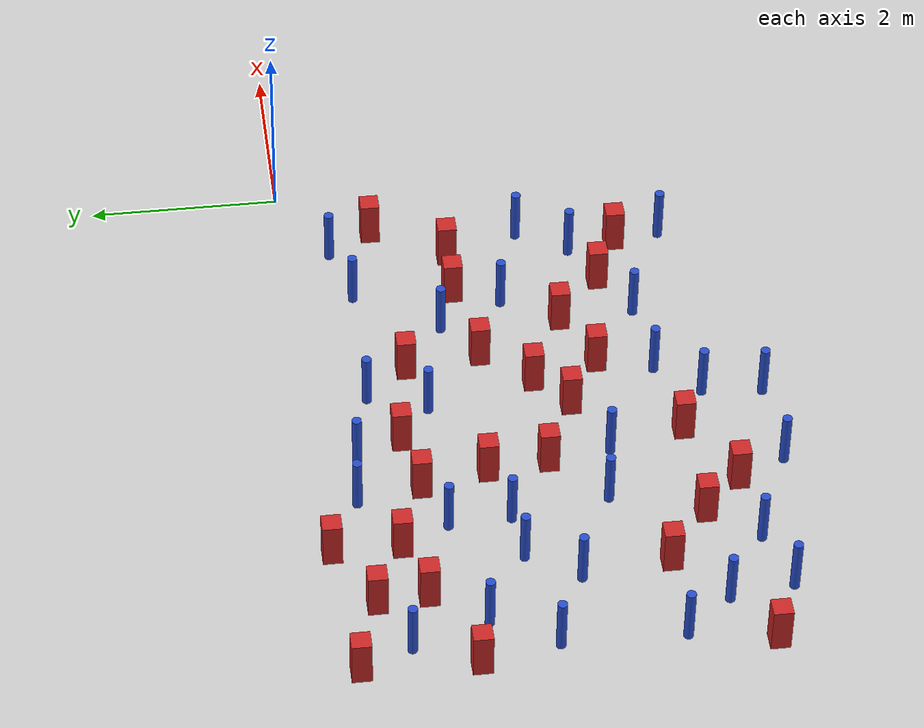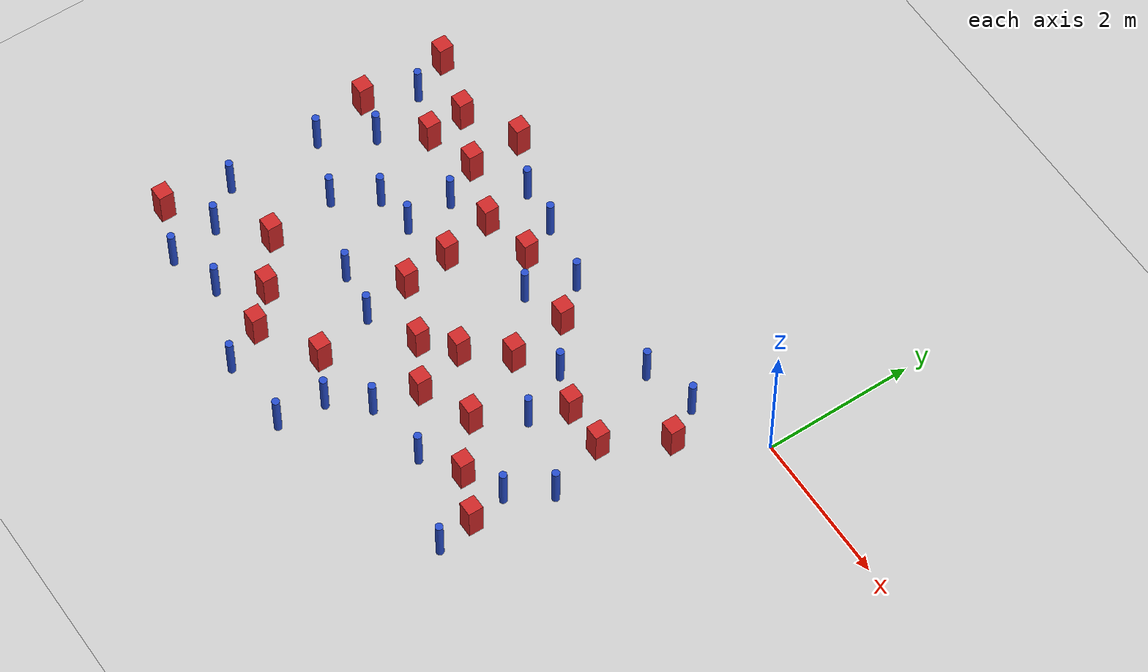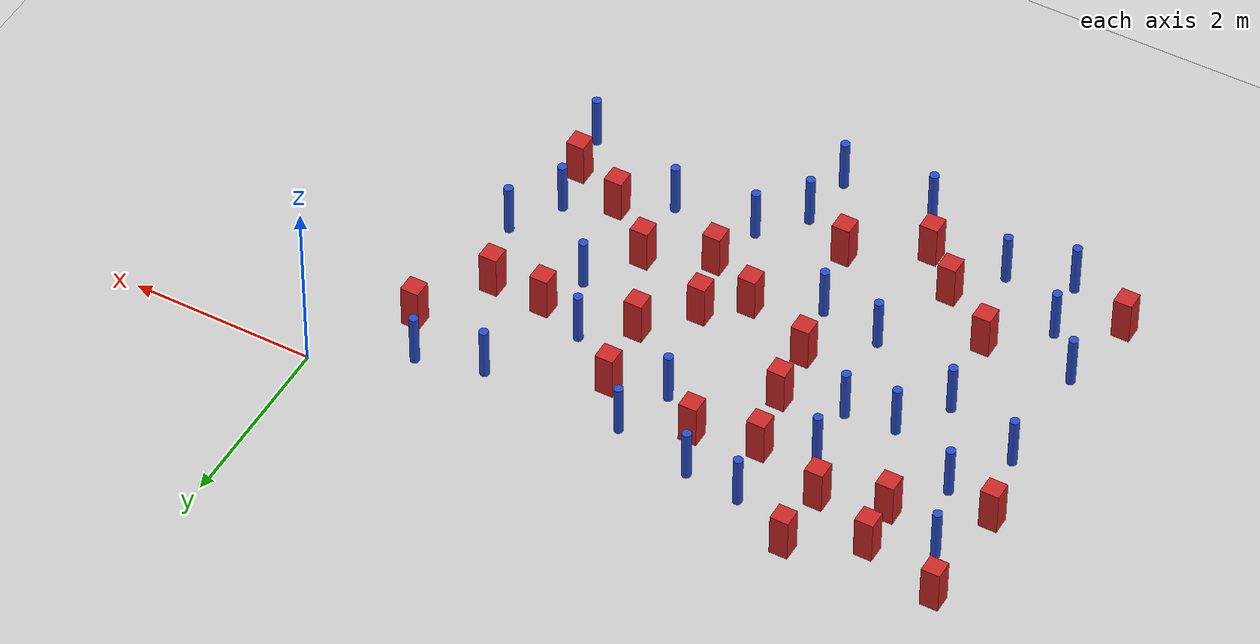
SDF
<sdf version="1.6">
 <world name="default">
  <model name="ground_plane">
   <static>1</static>
   <link name="link">
    <collision name="collision">
     <geometry><plane><normal>0 0 1</normal><size>100 100</size></plane></geometry>
     <surface><friction><ode><mu>100</mu><mu2>50</mu2></ode></friction></surface>
    </collision>
    <visual name="visual">
     <cast_shadows>0</cast_shadows>
     <geometry><plane><normal>0 0 1</normal><size>100 100</size></plane></geometry>
     <material>
      <ambient>1.0 1.0 1.0 1.0</ambient>
      <diffuse>0.8 0.8 0.8 1.0</diffuse>
      <specular>0.01 0.01 0.01 1.000000</specular>
     </material>
    </visual>
   </link>
  </model>
  <model name="pole_obstacle7">
   <static>true</static>
   <pose>-5.88980999024 -2.51619997922 -3.09024884793e-07 -7.19054271912e-07 -2.11315075135e-07 -1.93935509265e-07</pose>
   <link name="link">
    <pose>0 0 0.3 0 -0 0</pose>
    <inertial>
     <mass>1</mass>
     <inertia><ixx>0.145833</ixx><ixy>0</ixy><ixz>0</ixz><iyy>0.145833</iyy><iyz>0</iyz><izz>0.125</izz></inertia>
    </inertial>
    <collision name="collision">
     <geometry><cylinder><radius>0.05</radius><length>.6</length></cylinder></geometry>
    </collision>
    <visual name="visual">
     <geometry><cylinder><radius>0.05</radius><length>.6</length></cylinder></geometry>
     <material>
      <script><name>Gazebo/Blue</name><uri>file://media/materials/scripts/gazebo.material</uri></script>
     </material>
    </visual>
   </link>
  </model>
  <model name="pole_obstacle8">
   <static>true</static>
   <pose>-6.73233999024 -2.18094997922 -3.09024884793e-07 -7.19054271912e-07 -2.11315075144e-07 -1.93935509269e-07</pose>
   <link name="link">
    <pose>0 0 0.3 0 -0 0</pose>
    <inertial>
     <mass>1</mass>
     <inertia><ixx>0.145833</ixx><ixy>0</ixy><ixz>0</ixz><iyy>0.145833</iyy><iyz>0</iyz><izz>0.125</izz></inertia>
    </inertial>
    <collision name="collision">
     <geometry><cylinder><radius>0.05</radius><length>.6</length></cylinder></geometry>
    </collision>
    <visual name="visual">
     <geometry><cylinder><radius>0.05</radius><length>.6</length></cylinder></geometry>
     <material>
      <script><name>Gazebo/Blue</name><uri>file://media/materials/scripts/gazebo.material</uri></script>
     </material>
    </visual>
   </link>
  </model>
  <model name="square_post_obstacle9">
   <static>true</static>
   <pose>-3.1272499448 -2.40542002533 -4.36207812815e-07 3.75137919937e-06 9.77721102514e-07 2.47381364184e-05</pose>
   <link name="link">
    <pose>0 0 0.25 0 -0 0</pose>
    <inertial>
     <mass>100</mass>
     <inertia>
      <ixx>0.166667</ixx>
      <ixy>0</ixy>
      <ixz>0</ixz>
      <iyy>0.166667</iyy>
      <iyz>0</iyz>
      <izz>0.166667</izz>
     </inertia>
    </inertial>
    <collision name="collision"><geometry><box><size>.2 .2 .5</size></box></geometry></collision>
    <visual name="visual">
     <geometry><box><size>.2 .2 .5</size></box></geometry>
     <material>
      <script><name>Gazebo/Red</name><uri>file://media/materials/scripts/gazebo.material</uri></script>
     </material>
    </visual>
   </link>
  </model>
  <model name="square_post_obstacle20">
   <static>true</static>
   <pose>-5.3107999448 -0.792541025326 -4.36207812815e-07 3.75137919937e-06 9.77721102514e-07 2.47381364184e-05</pose>
   <link name="link">
    <pose>0 0 0.25 0 -0 0</pose>
    <inertial>
     <mass>100</mass>
     <inertia>
      <ixx>0.166667</ixx>
      <ixy>0</ixy>
      <ixz>0</ixz>
      <iyy>0.166667</iyy>
      <iyz>0</iyz>
      <izz>0.166667</izz>
     </inertia>
    </inertial>
    <collision name="collision"><geometry><box><size>.2 .2 .5</size></box></geometry></collision>
    <visual name="visual">
     <geometry><box><size>.2 .2 .5</size></box></geometry>
     <material>
      <script><name>Gazebo/Red</name><uri>file://media/materials/scripts/gazebo.material</uri></script>
     </material>
    </visual>
   </link>
  </model>
  <model name="pole_obstacle32">
   <static>true</static>
   <pose>-6.32651999024 -3.92005997922 -3.09024884793e-07 -7.19054271912e-07 -2.11315075135e-07 -1.93935509265e-07</pose>
   <link name="link">
    <pose>0 0 0.3 0 -0 0</pose>
    <inertial>
     <mass>1</mass>
     <inertia><ixx>0.145833</ixx><ixy>0</ixy><ixz>0</ixz><iyy>0.145833</iyy><iyz>0</iyz><izz>0.125</izz></inertia>
    </inertial>
    <collision name="collision">
     <geometry><cylinder><radius>0.05</radius><length>.6</length></cylinder></geometry>
    </collision>
    <visual name="visual">
     <geometry><cylinder><radius>0.05</radius><length>.6</length></cylinder></geometry>
     <material>
      <script><name>Gazebo/Blue</name><uri>file://media/materials/scripts/gazebo.material</uri></script>
     </material>
    </visual>
   </link>
  </model>
  <model name="square_post_obstacle27">
   <static>true</static>
   <pose>-4.3002799448 -2.40280002533 -4.36207812815e-07 3.75137919937e-06 9.77721102514e-07 2.47381364184e-05</pose>
   <link name="link">
    <pose>0 0 0.25 0 -0 0</pose>
    <inertial>
     <mass>100</mass>
     <inertia>
      <ixx>0.166667</ixx>
      <ixy>0</ixy>
      <ixz>0</ixz>
      <iyy>0.166667</iyy>
      <iyz>0</iyz>
      <izz>0.166667</izz>
     </inertia>
    </inertial>
    <collision name="collision"><geometry><box><size>.2 .2 .5</size></box></geometry></collision>
    <visual name="visual">
     <geometry><box><size>.2 .2 .5</size></box></geometry>
     <material>
      <script><name>Gazebo/Red</name><uri>file://media/materials/scripts/gazebo.material</uri></script>
     </material>
    </visual>
   </link>
  </model>
  <model name="square_post_obstacle36">
   <static>true</static>
   <pose>-2.2494299448 -2.80502002533 -4.36207812815e-07 3.75137919937e-06 9.77721102514e-07 2.47381364184e-05</pose>
   <link name="link">
    <pose>0 0 0.25 0 -0 0</pose>
    <inertial>
     <mass>100</mass>
     <inertia>
      <ixx>0.166667</ixx>
      <ixy>0</ixy>
      <ixz>0</ixz>
      <iyy>0.166667</iyy>
      <iyz>0</iyz>
      <izz>0.166667</izz>
     </inertia>
    </inertial>
    <collision name="collision"><geometry><box><size>.2 .2 .5</size></box></geometry></collision>
    <visual name="visual">
     <geometry><box><size>.2 .2 .5</size></box></geometry>
     <material>
      <script><name>Gazebo/Red</name><uri>file://media/materials/scripts/gazebo.material</uri></script>
     </material>
    </visual>
   </link>
  </model>
  <model name="pole_obstacle52">
   <static>true</static>
   <pose>-2.17680999024 -3.60393997922 -3.09024884848e-07 -7.19054271903e-07 -2.11315075195e-07 -1.93935509285e-07</pose>
   <link name="link">
    <pose>0 0 0.3 0 -0 0</pose>
    <inertial>
     <mass>1</mass>
     <inertia><ixx>0.145833</ixx><ixy>0</ixy><ixz>0</ixz><iyy>0.145833</iyy><iyz>0</iyz><izz>0.125</izz></inertia>
    </inertial>
    <collision name="collision">
     <geometry><cylinder><radius>0.05</radius><length>.6</length></cylinder></geometry>
    </collision>
    <visual name="visual">
     <geometry><cylinder><radius>0.05</radius><length>.6</length></cylinder></geometry>
     <material>
      <script><name>Gazebo/Blue</name><uri>file://media/materials/scripts/gazebo.material</uri></script>
     </material>
    </visual>
   </link>
  </model>
  <model name="square_post_obstacle53">
   <static>true</static>
   <pose>-5.7875799448 -3.42508002533 -4.36207812815e-07 3.75137919937e-06 9.77721102514e-07 2.47381364184e-05</pose>
   <link name="link">
    <pose>0 0 0.25 0 -0 0</pose>
    <inertial>
     <mass>100</mass>
     <inertia>
      <ixx>0.166667</ixx>
      <ixy>0</ixy>
      <ixz>0</ixz>
      <iyy>0.166667</iyy>
      <iyz>0</iyz>
      <izz>0.166667</izz>
     </inertia>
    </inertial>
    <collision name="collision"><geometry><box><size>.2 .2 .5</size></box></geometry></collision>
    <visual name="visual">
     <geometry><box><size>.2 .2 .5</size></box></geometry>
     <material>
      <script><name>Gazebo/Red</name><uri>file://media/materials/scripts/gazebo.material</uri></script>
     </material>
    </visual>
   </link>
  </model>
  <model name="square_post_obstacle62">
   <static>true</static>
   <pose>-2.6891399448 -1.89990002533 -4.36207812815e-07 3.75137919937e-06 9.77721102514e-07 2.47381364184e-05</pose>
   <link name="link">
    <pose>0 0 0.25 0 -0 0</pose>
    <inertial>
     <mass>100</mass>
     <inertia>
      <ixx>0.166667</ixx>
      <ixy>0</ixy>
      <ixz>0</ixz>
      <iyy>0.166667</iyy>
      <iyz>0</iyz>
      <izz>0.166667</izz>
     </inertia>
    </inertial>
    <collision name="collision"><geometry><box><size>.2 .2 .5</size></box></geometry></collision>
    <visual name="visual">
     <geometry><box><size>.2 .2 .5</size></box></geometry>
     <material>
      <script><name>Gazebo/Red</name><uri>file://media/materials/scripts/gazebo.material</uri></script>
     </material>
    </visual>
   </link>
  </model>
  <model name="pole_obstacle76">
   <static>true</static>
   <pose>-3.50894999024 -4.75461997922 -3.09024884848e-07 -7.19054271903e-07 -2.11315075193e-07 -1.93935509285e-07</pose>
   <link name="link">
    <pose>0 0 0.3 0 -0 0</pose>
    <inertial>
     <mass>1</mass>
     <inertia><ixx>0.145833</ixx><ixy>0</ixy><ixz>0</ixz><iyy>0.145833</iyy><iyz>0</iyz><izz>0.125</izz></inertia>
    </inertial>
    <collision name="collision">
     <geometry><cylinder><radius>0.05</radius><length>.6</length></cylinder></geometry>
    </collision>
    <visual name="visual">
     <geometry><cylinder><radius>0.05</radius><length>.6</length></cylinder></geometry>
     <material>
      <script><name>Gazebo/Blue</name><uri>file://media/materials/scripts/gazebo.material</uri></script>
     </material>
    </visual>
   </link>
  </model>
  <model name="square_post_obstacle72">
   <static>true</static>
   <pose>-6.0330299448 -0.463411025326 -4.36207812815e-07 3.75137919937e-06 9.77721102514e-07 2.47381364184e-05</pose>
   <link name="link">
    <pose>0 0 0.25 0 -0 0</pose>
    <inertial>
     <mass>100</mass>
     <inertia>
      <ixx>0.166667</ixx>
      <ixy>0</ixy>
      <ixz>0</ixz>
      <iyy>0.166667</iyy>
      <iyz>0</iyz>
      <izz>0.166667</izz>
     </inertia>
    </inertial>
    <collision name="collision"><geometry><box><size>.2 .2 .5</size></box></geometry></collision>
    <visual name="visual">
     <geometry><box><size>.2 .2 .5</size></box></geometry>
     <material>
      <script><name>Gazebo/Red</name><uri>file://media/materials/scripts/gazebo.material</uri></script>
     </material>
    </visual>
   </link>
  </model>
  <model name="pole_obstacle85">
   <static>true</static>
   <pose>-1.63928999024 -0.678962979217 -3.09024884793e-07 -7.19054271912e-07 -2.1131507513e-07 -1.93935509263e-07</pose>
   <link name="link">
    <pose>0 0 0.3 0 -0 0</pose>
    <inertial>
     <mass>1</mass>
     <inertia><ixx>0.145833</ixx><ixy>0</ixy><ixz>0</ixz><iyy>0.145833</iyy><iyz>0</iyz><izz>0.125</izz></inertia>
    </inertial>
    <collision name="collision">
     <geometry><cylinder><radius>0.05</radius><length>.6</length></cylinder></geometry>
    </collision>
    <visual name="visual">
     <geometry><cylinder><radius>0.05</radius><length>.6</length></cylinder></geometry>
     <material>
      <script><name>Gazebo/Blue</name><uri>file://media/materials/scripts/gazebo.material</uri></script>
     </material>
    </visual>
   </link>
  </model>
  <model name="square_post_obstacle81">
   <static>true</static>
   <pose>-6.8783699448 -0.214582025326 -4.36207812815e-07 3.75137919937e-06 9.77721102514e-07 2.47381364184e-05</pose>
   <link name="link">
    <pose>0 0 0.25 0 -0 0</pose>
    <inertial>
     <mass>100</mass>
     <inertia>
      <ixx>0.166667</ixx>
      <ixy>0</ixy>
      <ixz>0</ixz>
      <iyy>0.166667</iyy>
      <iyz>0</iyz>
      <izz>0.166667</izz>
     </inertia>
    </inertial>
    <collision name="collision"><geometry><box><size>.2 .2 .5</size></box></geometry></collision>
    <visual name="visual">
     <geometry><box><size>.2 .2 .5</size></box></geometry>
     <material>
      <script><name>Gazebo/Red</name><uri>file://media/materials/scripts/gazebo.material</uri></script>
     </material>
    </visual>
   </link>
  </model>
  <model name="square_post_obstacle82">
   <static>true</static>
   <pose>-2.8053899448 -1.11260002533 -4.36207812815e-07 3.75137919937e-06 9.77721102514e-07 2.47381364184e-05</pose>
   <link name="link">
    <pose>0 0 0.25 0 -0 0</pose>
    <inertial>
     <mass>100</mass>
     <inertia>
      <ixx>0.166667</ixx>
      <ixy>0</ixy>
      <ixz>0</ixz>
      <iyy>0.166667</iyy>
      <iyz>0</iyz>
      <izz>0.166667</izz>
     </inertia>
    </inertial>
    <collision name="collision"><geometry><box><size>.2 .2 .5</size></box></geometry></collision>
    <visual name="visual">
     <geometry><box><size>.2 .2 .5</size></box></geometry>
     <material>
      <script><name>Gazebo/Red</name><uri>file://media/materials/scripts/gazebo.material</uri></script>
     </material>
    </visual>
   </link>
  </model>
  <model name="pole_obstacle92">
   <static>true</static>
   <pose>-4.03740999024 -0.474789979217 -3.09024884793e-07 -7.19054271912e-07 -2.11315075137e-07 -1.93935509266e-07</pose>
   <link name="link">
    <pose>0 0 0.3 0 -0 0</pose>
    <inertial>
     <mass>1</mass>
     <inertia><ixx>0.145833</ixx><ixy>0</ixy><ixz>0</ixz><iyy>0.145833</iyy><iyz>0</iyz><izz>0.125</izz></inertia>
    </inertial>
    <collision name="collision">
     <geometry><cylinder><radius>0.05</radius><length>.6</length></cylinder></geometry>
    </collision>
    <visual name="visual">
     <geometry><cylinder><radius>0.05</radius><length>.6</length></cylinder></geometry>
     <material>
      <script><name>Gazebo/Blue</name><uri>file://media/materials/scripts/gazebo.material</uri></script>
     </material>
    </visual>
   </link>
  </model>
  <model name="square_post_obstacle87">
   <static>true</static>
   <pose>-6.9159399448 -4.29540002533 -4.36207812815e-07 3.75137919937e-06 9.77721102514e-07 2.47381364184e-05</pose>
   <link name="link">
    <pose>0 0 0.25 0 -0 0</pose>
    <inertial>
     <mass>100</mass>
     <inertia>
      <ixx>0.166667</ixx>
      <ixy>0</ixy>
      <ixz>0</ixz>
      <iyy>0.166667</iyy>
      <iyz>0</iyz>
      <izz>0.166667</izz>
     </inertia>
    </inertial>
    <collision name="collision"><geometry><box><size>.2 .2 .5</size></box></geometry></collision>
    <visual name="visual">
     <geometry><box><size>.2 .2 .5</size></box></geometry>
     <material>
      <script><name>Gazebo/Red</name><uri>file://media/materials/scripts/gazebo.material</uri></script>
     </material>
    </visual>
   </link>
  </model>
  <model name="square_post_obstacle88">
   <static>true</static>
   <pose>-5.9878399448 -0.981229025326 -4.36207812815e-07 3.75137919937e-06 9.77721102514e-07 2.47381364184e-05</pose>
   <link name="link">
    <pose>0 0 0.25 0 -0 0</pose>
    <inertial>
     <mass>100</mass>
     <inertia>
      <ixx>0.166667</ixx>
      <ixy>0</ixy>
      <ixz>0</ixz>
      <iyy>0.166667</iyy>
      <iyz>0</iyz>
      <izz>0.166667</izz>
     </inertia>
    </inertial>
    <collision name="collision"><geometry><box><size>.2 .2 .5</size></box></geometry></collision>
    <visual name="visual">
     <geometry><box><size>.2 .2 .5</size></box></geometry>
     <material>
      <script><name>Gazebo/Red</name><uri>file://media/materials/scripts/gazebo.material</uri></script>
     </material>
    </visual>
   </link>
  </model>
  <model name="square_post_obstacle96">
   <static>true</static>
   <pose>-1.0811299448 -3.56258002533 -4.36207812815e-07 3.75137919937e-06 9.77721102514e-07 2.47381364184e-05</pose>
   <link name="link">
    <pose>0 0 0.25 0 -0 0</pose>
    <inertial>
     <mass>100</mass>
     <inertia>
      <ixx>0.166667</ixx>
      <ixy>0</ixy>
      <ixz>0</ixz>
      <iyy>0.166667</iyy>
      <iyz>0</iyz>
      <izz>0.166667</izz>
     </inertia>
    </inertial>
    <collision name="collision"><geometry><box><size>.2 .2 .5</size></box></geometry></collision>
    <visual name="visual">
     <geometry><box><size>.2 .2 .5</size></box></geometry>
     <material>
      <script><name>Gazebo/Red</name><uri>file://media/materials/scripts/gazebo.material</uri></script>
     </material>
    </visual>
   </link>
  </model>
  <model name="pole_obstacle104">
   <static>true</static>
   <pose>-5.55288999024 -4.37852997922 -3.09024884793e-07 -7.19054271911e-07 -2.1131507516e-07 -1.93935509277e-07</pose>
   <link name="link">
    <pose>0 0 0.3 0 -0 0</pose>
    <inertial>
     <mass>1</mass>
     <inertia><ixx>0.145833</ixx><ixy>0</ixy><ixz>0</ixz><iyy>0.145833</iyy><iyz>0</iyz><izz>0.125</izz></inertia>
    </inertial>
    <collision name="collision">
     <geometry><cylinder><radius>0.05</radius><length>.6</length></cylinder></geometry>
    </collision>
    <visual name="visual">
     <geometry><cylinder><radius>0.05</radius><length>.6</length></cylinder></geometry>
     <material>
      <script><name>Gazebo/Blue</name><uri>file://media/materials/scripts/gazebo.material</uri></script>
     </material>
    </visual>
   </link>
  </model>
  <model name="pole_obstacle106">
   <static>true</static>
   <pose>-5.54922999024 -1.98764997922 -3.09024884793e-07 -7.19054271912e-07 -2.11315075115e-07 -1.93935509255e-07</pose>
   <link name="link">
    <pose>0 0 0.3 0 -0 0</pose>
    <inertial>
     <mass>1</mass>
     <inertia><ixx>0.145833</ixx><ixy>0</ixy><ixz>0</ixz><iyy>0.145833</iyy><iyz>0</iyz><izz>0.125</izz></inertia>
    </inertial>
    <collision name="collision">
     <geometry><cylinder><radius>0.05</radius><length>.6</length></cylinder></geometry>
    </collision>
    <visual name="visual">
     <geometry><cylinder><radius>0.05</radius><length>.6</length></cylinder></geometry>
     <material>
      <script><name>Gazebo/Blue</name><uri>file://media/materials/scripts/gazebo.material</uri></script>
     </material>
    </visual>
   </link>
  </model>
  <model name="pole_obstacle117">
   <static>true</static>
   <pose>-4.63686999024 -0.415469979217 -3.09024884793e-07 -7.19054271912e-07 -2.11315075138e-07 -1.93935509266e-07</pose>
   <link name="link">
    <pose>0 0 0.3 0 -0 0</pose>
    <inertial>
     <mass>1</mass>
     <inertia><ixx>0.145833</ixx><ixy>0</ixy><ixz>0</ixz><iyy>0.145833</iyy><iyz>0</iyz><izz>0.125</izz></inertia>
    </inertial>
    <collision name="collision">
     <geometry><cylinder><radius>0.05</radius><length>.6</length></cylinder></geometry>
    </collision>
    <visual name="visual">
     <geometry><cylinder><radius>0.05</radius><length>.6</length></cylinder></geometry>
     <material>
      <script><name>Gazebo/Blue</name><uri>file://media/materials/scripts/gazebo.material</uri></script>
     </material>
    </visual>
   </link>
  </model>
  <model name="square_post_obstacle116">
   <static>true</static>
   <pose>-0.669029944804 -0.961219025326 -4.36207812815e-07 3.75137919937e-06 9.77721102514e-07 2.47381364184e-05</pose>
   <link name="link">
    <pose>0 0 0.25 0 -0 0</pose>
    <inertial>
     <mass>100</mass>
     <inertia>
      <ixx>0.166667</ixx>
      <ixy>0</ixy>
      <ixz>0</ixz>
      <iyy>0.166667</iyy>
      <iyz>0</iyz>
      <izz>0.166667</izz>
     </inertia>
    </inertial>
    <collision name="collision"><geometry><box><size>.2 .2 .5</size></box></geometry></collision>
    <visual name="visual">
     <geometry><box><size>.2 .2 .5</size></box></geometry>
     <material>
      <script><name>Gazebo/Red</name><uri>file://media/materials/scripts/gazebo.material</uri></script>
     </material>
    </visual>
   </link>
  </model>
  <model name="pole_obstacle119">
   <static>true</static>
   <pose>-1.88406999024 -2.22853997922 -3.09024884848e-07 -7.19054271902e-07 -2.11315075192e-07 -1.93935509282e-07</pose>
   <link name="link">
    <pose>0 0 0.3 0 -0 0</pose>
    <inertial>
     <mass>1</mass>
     <inertia><ixx>0.145833</ixx><ixy>0</ixy><ixz>0</ixz><iyy>0.145833</iyy><iyz>0</iyz><izz>0.125</izz></inertia>
    </inertial>
    <collision name="collision">
     <geometry><cylinder><radius>0.05</radius><length>.6</length></cylinder></geometry>
    </collision>
    <visual name="visual">
     <geometry><cylinder><radius>0.05</radius><length>.6</length></cylinder></geometry>
     <material>
      <script><name>Gazebo/Blue</name><uri>file://media/materials/scripts/gazebo.material</uri></script>
     </material>
    </visual>
   </link>
  </model>
  <model name="pole_obstacle120">
   <static>true</static>
   <pose>-6.36760999024 -1.53090997922 -3.09024884793e-07 -7.19054271912e-07 -2.11315075124e-07 -1.93935509261e-07</pose>
   <link name="link">
    <pose>0 0 0.3 0 -0 0</pose>
    <inertial>
     <mass>1</mass>
     <inertia><ixx>0.145833</ixx><ixy>0</ixy><ixz>0</ixz><iyy>0.145833</iyy><iyz>0</iyz><izz>0.125</izz></inertia>
    </inertial>
    <collision name="collision">
     <geometry><cylinder><radius>0.05</radius><length>.6</length></cylinder></geometry>
    </collision>
    <visual name="visual">
     <geometry><cylinder><radius>0.05</radius><length>.6</length></cylinder></geometry>
     <material>
      <script><name>Gazebo/Blue</name><uri>file://media/materials/scripts/gazebo.material</uri></script>
     </material>
    </visual>
   </link>
  </model>
  <model name="pole_obstacle129">
   <static>true</static>
   <pose>-2.21075999024 -1.55062997922 -3.09024884793e-07 -7.19054271911e-07 -2.11315075167e-07 -1.93935509283e-07</pose>
   <link name="link">
    <pose>0 0 0.3 0 -0 0</pose>
    <inertial>
     <mass>1</mass>
     <inertia><ixx>0.145833</ixx><ixy>0</ixy><ixz>0</ixz><iyy>0.145833</iyy><iyz>0</iyz><izz>0.125</izz></inertia>
    </inertial>
    <collision name="collision">
     <geometry><cylinder><radius>0.05</radius><length>.6</length></cylinder></geometry>
    </collision>
    <visual name="visual">
     <geometry><cylinder><radius>0.05</radius><length>.6</length></cylinder></geometry>
     <material>
      <script><name>Gazebo/Blue</name><uri>file://media/materials/scripts/gazebo.material</uri></script>
     </material>
    </visual>
   </link>
  </model>
  <model name="pole_obstacle133">
   <static>true</static>
   <pose>-3.44663999024 -4.12726997922 -3.09024884848e-07 -7.19054271903e-07 -2.11315075193e-07 -1.93935509285e-07</pose>
   <link name="link">
    <pose>0 0 0.3 0 -0 0</pose>
    <inertial>
     <mass>1</mass>
     <inertia><ixx>0.145833</ixx><ixy>0</ixy><ixz>0</ixz><iyy>0.145833</iyy><iyz>0</iyz><izz>0.125</izz></inertia>
    </inertial>
    <collision name="collision">
     <geometry><cylinder><radius>0.05</radius><length>.6</length></cylinder></geometry>
    </collision>
    <visual name="visual">
     <geometry><cylinder><radius>0.05</radius><length>.6</length></cylinder></geometry>
     <material>
      <script><name>Gazebo/Blue</name><uri>file://media/materials/scripts/gazebo.material</uri></script>
     </material>
    </visual>
   </link>
  </model>
  <model name="pole_obstacle136">
   <static>true</static>
   <pose>-0.848078990239 -2.52636997922 -3.09024884793e-07 -7.19054271912e-07 -2.11315075129e-07 -1.93935509263e-07</pose>
   <link name="link">
    <pose>0 0 0.3 0 -0 0</pose>
    <inertial>
     <mass>1</mass>
     <inertia><ixx>0.145833</ixx><ixy>0</ixy><ixz>0</ixz><iyy>0.145833</iyy><iyz>0</iyz><izz>0.125</izz></inertia>
    </inertial>
    <collision name="collision">
     <geometry><cylinder><radius>0.05</radius><length>.6</length></cylinder></geometry>
    </collision>
    <visual name="visual">
     <geometry><cylinder><radius>0.05</radius><length>.6</length></cylinder></geometry>
     <material>
      <script><name>Gazebo/Blue</name><uri>file://media/materials/scripts/gazebo.material</uri></script>
     </material>
    </visual>
   </link>
  </model>
  <model name="pole_obstacle140">
   <static>true</static>
   <pose>-6.22300999024 -4.58109997922 -3.09024884793e-07 -7.19054271911e-07 -2.1131507516e-07 -1.93935509277e-07</pose>
   <link name="link">
    <pose>0 0 0.3 0 -0 0</pose>
    <inertial>
     <mass>1</mass>
     <inertia><ixx>0.145833</ixx><ixy>0</ixy><ixz>0</ixz><iyy>0.145833</iyy><iyz>0</iyz><izz>0.125</izz></inertia>
    </inertial>
    <collision name="collision">
     <geometry><cylinder><radius>0.05</radius><length>.6</length></cylinder></geometry>
    </collision>
    <visual name="visual">
     <geometry><cylinder><radius>0.05</radius><length>.6</length></cylinder></geometry>
     <material>
      <script><name>Gazebo/Blue</name><uri>file://media/materials/scripts/gazebo.material</uri></script>
     </material>
    </visual>
   </link>
  </model>
  <model name="square_post_obstacle135">
   <static>true</static>
   <pose>-4.7588799448 -4.28148002533 -4.36207812815e-07 3.75137919937e-06 9.77721102514e-07 2.47381364184e-05</pose>
   <link name="link">
    <pose>0 0 0.25 0 -0 0</pose>
    <inertial>
     <mass>100</mass>
     <inertia>
      <ixx>0.166667</ixx>
      <ixy>0</ixy>
      <ixz>0</ixz>
      <iyy>0.166667</iyy>
      <iyz>0</iyz>
      <izz>0.166667</izz>
     </inertia>
    </inertial>
    <collision name="collision"><geometry><box><size>.2 .2 .5</size></box></geometry></collision>
    <visual name="visual">
     <geometry><box><size>.2 .2 .5</size></box></geometry>
     <material>
      <script><name>Gazebo/Red</name><uri>file://media/materials/scripts/gazebo.material</uri></script>
     </material>
    </visual>
   </link>
  </model>
  <model name="square_post_obstacle136">
   <static>true</static>
   <pose>-4.5213299448 -1.07696002533 -4.36207812815e-07 3.75137919937e-06 9.77721102514e-07 2.47381364184e-05</pose>
   <link name="link">
    <pose>0 0 0.25 0 -0 0</pose>
    <inertial>
     <mass>100</mass>
     <inertia>
      <ixx>0.166667</ixx>
      <ixy>0</ixy>
      <ixz>0</ixz>
      <iyy>0.166667</iyy>
      <iyz>0</iyz>
      <izz>0.166667</izz>
     </inertia>
    </inertial>
    <collision name="collision"><geometry><box><size>.2 .2 .5</size></box></geometry></collision>
    <visual name="visual">
     <geometry><box><size>.2 .2 .5</size></box></geometry>
     <material>
      <script><name>Gazebo/Red</name><uri>file://media/materials/scripts/gazebo.material</uri></script>
     </material>
    </visual>
   </link>
  </model>
  <model name="square_post_obstacle137">
   <static>true</static>
   <pose>-1.1139999448 -1.74364002533 -4.36207812815e-07 3.75137919937e-06 9.77721102514e-07 2.47381364184e-05</pose>
   <link name="link">
    <pose>0 0 0.25 0 -0 0</pose>
    <inertial>
     <mass>100</mass>
     <inertia>
      <ixx>0.166667</ixx>
      <ixy>0</ixy>
      <ixz>0</ixz>
      <iyy>0.166667</iyy>
      <iyz>0</iyz>
      <izz>0.166667</izz>
     </inertia>
    </inertial>
    <collision name="collision"><geometry><box><size>.2 .2 .5</size></box></geometry></collision>
    <visual name="visual">
     <geometry><box><size>.2 .2 .5</size></box></geometry>
     <material>
      <script><name>Gazebo/Red</name><uri>file://media/materials/scripts/gazebo.material</uri></script>
     </material>
    </visual>
   </link>
  </model>
  <model name="pole_obstacle151">
   <static>true</static>
   <pose>-6.74801999024 -3.43252997922 -3.09024884793e-07 -7.19054271912e-07 -2.11315075144e-07 -1.93935509269e-07</pose>
   <link name="link">
    <pose>0 0 0.3 0 -0 0</pose>
    <inertial>
     <mass>1</mass>
     <inertia><ixx>0.145833</ixx><ixy>0</ixy><ixz>0</ixz><iyy>0.145833</iyy><iyz>0</iyz><izz>0.125</izz></inertia>
    </inertial>
    <collision name="collision">
     <geometry><cylinder><radius>0.05</radius><length>.6</length></cylinder></geometry>
    </collision>
    <visual name="visual">
     <geometry><cylinder><radius>0.05</radius><length>.6</length></cylinder></geometry>
     <material>
      <script><name>Gazebo/Blue</name><uri>file://media/materials/scripts/gazebo.material</uri></script>
     </material>
    </visual>
   </link>
  </model>
  <model name="square_post_obstacle148">
   <static>true</static>
   <pose>-1.7050999448 -1.73418002533 -4.36207812815e-07 3.75137919937e-06 9.77721102514e-07 2.47381364184e-05</pose>
   <link name="link">
    <pose>0 0 0.25 0 -0 0</pose>
    <inertial>
     <mass>100</mass>
     <inertia>
      <ixx>0.166667</ixx>
      <ixy>0</ixy>
      <ixz>0</ixz>
      <iyy>0.166667</iyy>
      <iyz>0</iyz>
      <izz>0.166667</izz>
     </inertia>
    </inertial>
    <collision name="collision"><geometry><box><size>.2 .2 .5</size></box></geometry></collision>
    <visual name="visual">
     <geometry><box><size>.2 .2 .5</size></box></geometry>
     <material>
      <script><name>Gazebo/Red</name><uri>file://media/materials/scripts/gazebo.material</uri></script>
     </material>
    </visual>
   </link>
  </model>
  <model name="square_post_obstacle150">
   <static>true</static>
   <pose>-1.6726699448 -3.29393002533 -4.36207812815e-07 3.75137919937e-06 9.77721102514e-07 2.47381364184e-05</pose>
   <link name="link">
    <pose>0 0 0.25 0 -0 0</pose>
    <inertial>
     <mass>100</mass>
     <inertia>
      <ixx>0.166667</ixx>
      <ixy>0</ixy>
      <ixz>0</ixz>
      <iyy>0.166667</iyy>
      <iyz>0</iyz>
      <izz>0.166667</izz>
     </inertia>
    </inertial>
    <collision name="collision"><geometry><box><size>.2 .2 .5</size></box></geometry></collision>
    <visual name="visual">
     <geometry><box><size>.2 .2 .5</size></box></geometry>
     <material>
      <script><name>Gazebo/Red</name><uri>file://media/materials/scripts/gazebo.material</uri></script>
     </material>
    </visual>
   </link>
  </model>
  <model name="square_post_obstacle163">
   <static>true</static>
   <pose>-5.3128799448 -0.0897060253263 -4.36207812815e-07 3.75137919937e-06 9.77721102514e-07 2.47381364184e-05</pose>
   <link name="link">
    <pose>0 0 0.25 0 -0 0</pose>
    <inertial>
     <mass>100</mass>
     <inertia>
      <ixx>0.166667</ixx>
      <ixy>0</ixy>
      <ixz>0</ixz>
      <iyy>0.166667</iyy>
      <iyz>0</iyz>
      <izz>0.166667</izz>
     </inertia>
    </inertial>
    <collision name="collision"><geometry><box><size>.2 .2 .5</size></box></geometry></collision>
    <visual name="visual">
     <geometry><box><size>.2 .2 .5</size></box></geometry>
     <material>
      <script><name>Gazebo/Red</name><uri>file://media/materials/scripts/gazebo.material</uri></script>
     </material>
    </visual>
   </link>
  </model>
  <model name="pole_obstacle166">
   <static>true</static>
   <pose>-5.04419999024 -1.28863997922 -3.09024884793e-07 -7.19054271912e-07 -2.11315075124e-07 -1.93935509261e-07</pose>
   <link name="link">
    <pose>0 0 0.3 0 -0 0</pose>
    <inertial>
     <mass>1</mass>
     <inertia><ixx>0.145833</ixx><ixy>0</ixy><ixz>0</ixz><iyy>0.145833</iyy><iyz>0</iyz><izz>0.125</izz></inertia>
    </inertial>
    <collision name="collision">
     <geometry><cylinder><radius>0.05</radius><length>.6</length></cylinder></geometry>
    </collision>
    <visual name="visual">
     <geometry><cylinder><radius>0.05</radius><length>.6</length></cylinder></geometry>
     <material>
      <script><name>Gazebo/Blue</name><uri>file://media/materials/scripts/gazebo.material</uri></script>
     </material>
    </visual>
   </link>
  </model>
  <model name="square_post_obstacle168">
   <static>true</static>
   <pose>-3.9937099448 -3.84085002533 -4.36207812815e-07 3.75137919937e-06 9.77721102514e-07 2.47381364184e-05</pose>
   <link name="link">
    <pose>0 0 0.25 0 -0 0</pose>
    <inertial>
     <mass>100</mass>
     <inertia>
      <ixx>0.166667</ixx>
      <ixy>0</ixy>
      <ixz>0</ixz>
      <iyy>0.166667</iyy>
      <iyz>0</iyz>
      <izz>0.166667</izz>
     </inertia>
    </inertial>
    <collision name="collision"><geometry><box><size>.2 .2 .5</size></box></geometry></collision>
    <visual name="visual">
     <geometry><box><size>.2 .2 .5</size></box></geometry>
     <material>
      <script><name>Gazebo/Red</name><uri>file://media/materials/scripts/gazebo.material</uri></script>
     </material>
    </visual>
   </link>
  </model>
  <model name="pole_obstacle170">
   <static>true</static>
   <pose>-1.00006999024 -4.06325997922 -3.09024884793e-07 -7.19054271912e-07 -2.11315075133e-07 -1.93935509264e-07</pose>
   <link name="link">
    <pose>0 0 0.3 0 -0 0</pose>
    <inertial>
     <mass>1</mass>
     <inertia><ixx>0.145833</ixx><ixy>0</ixy><ixz>0</ixz><iyy>0.145833</iyy><iyz>0</iyz><izz>0.125</izz></inertia>
    </inertial>
    <collision name="collision">
     <geometry><cylinder><radius>0.05</radius><length>.6</length></cylinder></geometry>
    </collision>
    <visual name="visual">
     <geometry><cylinder><radius>0.05</radius><length>.6</length></cylinder></geometry>
     <material>
      <script><name>Gazebo/Blue</name><uri>file://media/materials/scripts/gazebo.material</uri></script>
     </material>
    </visual>
   </link>
  </model>
  <model name="pole_obstacle175">
   <static>true</static>
   <pose>-3.06019999024 -3.68471997922 -3.09024884848e-07 -7.19054271903e-07 -2.11315075185e-07 -1.93935509279e-07</pose>
   <link name="link">
    <pose>0 0 0.3 0 -0 0</pose>
    <inertial>
     <mass>1</mass>
     <inertia><ixx>0.145833</ixx><ixy>0</ixy><ixz>0</ixz><iyy>0.145833</iyy><iyz>0</iyz><izz>0.125</izz></inertia>
    </inertial>
    <collision name="collision">
     <geometry><cylinder><radius>0.05</radius><length>.6</length></cylinder></geometry>
    </collision>
    <visual name="visual">
     <geometry><cylinder><radius>0.05</radius><length>.6</length></cylinder></geometry>
     <material>
      <script><name>Gazebo/Blue</name><uri>file://media/materials/scripts/gazebo.material</uri></script>
     </material>
    </visual>
   </link>
  </model>
  <model name="pole_obstacle176">
   <static>true</static>
   <pose>-4.84665999024 -2.94217997922 -3.09024884793e-07 -7.19054271912e-07 -2.11315075135e-07 -1.93935509265e-07</pose>
   <link name="link">
    <pose>0 0 0.3 0 -0 0</pose>
    <inertial>
     <mass>1</mass>
     <inertia><ixx>0.145833</ixx><ixy>0</ixy><ixz>0</ixz><iyy>0.145833</iyy><iyz>0</iyz><izz>0.125</izz></inertia>
    </inertial>
    <collision name="collision">
     <geometry><cylinder><radius>0.05</radius><length>.6</length></cylinder></geometry>
    </collision>
    <visual name="visual">
     <geometry><cylinder><radius>0.05</radius><length>.6</length></cylinder></geometry>
     <material>
      <script><name>Gazebo/Blue</name><uri>file://media/materials/scripts/gazebo.material</uri></script>
     </material>
    </visual>
   </link>
  </model>
  <model name="pole_obstacle178">
   <static>true</static>
   <pose>-0.942261990239 -0.498072979217 -3.09024884793e-07 -7.19054271912e-07 -2.11315075131e-07 -1.93935509264e-07</pose>
   <link name="link">
    <pose>0 0 0.3 0 -0 0</pose>
    <inertial>
     <mass>1</mass>
     <inertia><ixx>0.145833</ixx><ixy>0</ixy><ixz>0</ixz><iyy>0.145833</iyy><iyz>0</iyz><izz>0.125</izz></inertia>
    </inertial>
    <collision name="collision">
     <geometry><cylinder><radius>0.05</radius><length>.6</length></cylinder></geometry>
    </collision>
    <visual name="visual">
     <geometry><cylinder><radius>0.05</radius><length>.6</length></cylinder></geometry>
     <material>
      <script><name>Gazebo/Blue</name><uri>file://media/materials/scripts/gazebo.material</uri></script>
     </material>
    </visual>
   </link>
  </model>
  <model name="pole_obstacle182">
   <static>true</static>
   <pose>-6.62986999024 -0.742979979217 -3.09024884793e-07 -7.19054271912e-07 -2.11315075134e-07 -1.93935509265e-07</pose>
   <link name="link">
    <pose>0 0 0.3 0 -0 0</pose>
    <inertial>
     <mass>1</mass>
     <inertia><ixx>0.145833</ixx><ixy>0</ixy><ixz>0</ixz><iyy>0.145833</iyy><iyz>0</iyz><izz>0.125</izz></inertia>
    </inertial>
    <collision name="collision">
     <geometry><cylinder><radius>0.05</radius><length>.6</length></cylinder></geometry>
    </collision>
    <visual name="visual">
     <geometry><cylinder><radius>0.05</radius><length>.6</length></cylinder></geometry>
     <material>
      <script><name>Gazebo/Blue</name><uri>file://media/materials/scripts/gazebo.material</uri></script>
     </material>
    </visual>
   </link>
  </model>
  <model name="pole_obstacle185">
   <static>true</static>
   <pose>-4.50506999024 -4.79520997922 -3.09024884793e-07 -7.19054271911e-07 -2.1131507516e-07 -1.93935509277e-07</pose>
   <link name="link">
    <pose>0 0 0.3 0 -0 0</pose>
    <inertial>
     <mass>1</mass>
     <inertia><ixx>0.145833</ixx><ixy>0</ixy><ixz>0</ixz><iyy>0.145833</iyy><iyz>0</iyz><izz>0.125</izz></inertia>
    </inertial>
    <collision name="collision">
     <geometry><cylinder><radius>0.05</radius><length>.6</length></cylinder></geometry>
    </collision>
    <visual name="visual">
     <geometry><cylinder><radius>0.05</radius><length>.6</length></cylinder></geometry>
     <material>
      <script><name>Gazebo/Blue</name><uri>file://media/materials/scripts/gazebo.material</uri></script>
     </material>
    </visual>
   </link>
  </model>
  <model name="pole_obstacle186">
   <static>true</static>
   <pose>-3.17020999024 -0.666150979217 -3.09024884793e-07 -7.19054271912e-07 -2.11315075126e-07 -1.93935509262e-07</pose>
   <link name="link">
    <pose>0 0 0.3 0 -0 0</pose>
    <inertial>
     <mass>1</mass>
     <inertia><ixx>0.145833</ixx><ixy>0</ixy><ixz>0</ixz><iyy>0.145833</iyy><iyz>0</iyz><izz>0.125</izz></inertia>
    </inertial>
    <collision name="collision">
     <geometry><cylinder><radius>0.05</radius><length>.6</length></cylinder></geometry>
    </collision>
    <visual name="visual">
     <geometry><cylinder><radius>0.05</radius><length>.6</length></cylinder></geometry>
     <material>
      <script><name>Gazebo/Blue</name><uri>file://media/materials/scripts/gazebo.material</uri></script>
     </material>
    </visual>
   </link>
  </model>
  <model name="square_post_obstacle189">
   <static>true</static>
   <pose>-3.8356399448 -0.949167025326 -4.36207812815e-07 3.75137919937e-06 9.77721102514e-07 2.47381364184e-05</pose>
   <link name="link">
    <pose>0 0 0.25 0 -0 0</pose>
    <inertial>
     <mass>100</mass>
     <inertia>
      <ixx>0.166667</ixx>
      <ixy>0</ixy>
      <ixz>0</ixz>
      <iyy>0.166667</iyy>
      <iyz>0</iyz>
      <izz>0.166667</izz>
     </inertia>
    </inertial>
    <collision name="collision"><geometry><box><size>.2 .2 .5</size></box></geometry></collision>
    <visual name="visual">
     <geometry><box><size>.2 .2 .5</size></box></geometry>
     <material>
      <script><name>Gazebo/Red</name><uri>file://media/materials/scripts/gazebo.material</uri></script>
     </material>
    </visual>
   </link>
  </model>
  <model name="square_post_obstacle204">
   <static>true</static>
   <pose>-6.9146999448 -1.38418002533 -4.36207812815e-07 3.75137919937e-06 9.77721102514e-07 2.47381364184e-05</pose>
   <link name="link">
    <pose>0 0 0.25 0 -0 0</pose>
    <inertial>
     <mass>100</mass>
     <inertia>
      <ixx>0.166667</ixx>
      <ixy>0</ixy>
      <ixz>0</ixz>
      <iyy>0.166667</iyy>
      <iyz>0</iyz>
      <izz>0.166667</izz>
     </inertia>
    </inertial>
    <collision name="collision"><geometry><box><size>.2 .2 .5</size></box></geometry></collision>
    <visual name="visual">
     <geometry><box><size>.2 .2 .5</size></box></geometry>
     <material>
      <script><name>Gazebo/Red</name><uri>file://media/materials/scripts/gazebo.material</uri></script>
     </material>
    </visual>
   </link>
  </model>
  <model name="pole_obstacle195">
   <static>true</static>
   <pose>-3.38825999024 -1.27972997922 -3.09024884793e-07 -7.19054271912e-07 -2.11315075122e-07 -1.93935509258e-07</pose>
   <link name="link">
    <pose>0 0 0.3 0 -0 0</pose>
    <inertial>
     <mass>1</mass>
     <inertia><ixx>0.145833</ixx><ixy>0</ixy><ixz>0</ixz><iyy>0.145833</iyy><iyz>0</iyz><izz>0.125</izz></inertia>
    </inertial>
    <collision name="collision">
     <geometry><cylinder><radius>0.05</radius><length>.6</length></cylinder></geometry>
    </collision>
    <visual name="visual">
     <geometry><cylinder><radius>0.05</radius><length>.6</length></cylinder></geometry>
     <material>
      <script><name>Gazebo/Blue</name><uri>file://media/materials/scripts/gazebo.material</uri></script>
     </material>
    </visual>
   </link>
  </model>
  <model name="square_post_obstacle205">
   <static>true</static>
   <pose>-5.1741599448 -3.87255002533 -4.36207812815e-07 3.75137919937e-06 9.77721102514e-07 2.47381364184e-05</pose>
   <link name="link">
    <pose>0 0 0.25 0 -0 0</pose>
    <inertial>
     <mass>100</mass>
     <inertia>
      <ixx>0.166667</ixx>
      <ixy>0</ixy>
      <ixz>0</ixz>
      <iyy>0.166667</iyy>
      <iyz>0</iyz>
      <izz>0.166667</izz>
     </inertia>
    </inertial>
    <collision name="collision"><geometry><box><size>.2 .2 .5</size></box></geometry></collision>
    <visual name="visual">
     <geometry><box><size>.2 .2 .5</size></box></geometry>
     <material>
      <script><name>Gazebo/Red</name><uri>file://media/materials/scripts/gazebo.material</uri></script>
     </material>
    </visual>
   </link>
  </model>
  <model name="pole_obstacle198">
   <static>true</static>
   <pose>-4.18158999024 -3.05602997922 -3.09024884793e-07 -7.19054271912e-07 -2.11315075144e-07 -1.93935509269e-07</pose>
   <link name="link">
    <pose>0 0 0.3 0 -0 0</pose>
    <inertial>
     <mass>1</mass>
     <inertia><ixx>0.145833</ixx><ixy>0</ixy><ixz>0</ixz><iyy>0.145833</iyy><iyz>0</iyz><izz>0.125</izz></inertia>
    </inertial>
    <collision name="collision">
     <geometry><cylinder><radius>0.05</radius><length>.6</length></cylinder></geometry>
    </collision>
    <visual name="visual">
     <geometry><cylinder><radius>0.05</radius><length>.6</length></cylinder></geometry>
     <material>
      <script><name>Gazebo/Blue</name><uri>file://media/materials/scripts/gazebo.material</uri></script>
     </material>
    </visual>
   </link>
  </model>
  <model name="square_post_obstacle206">
   <static>true</static>
   <pose>-3.5135799448 -2.74402002533 -4.36207812815e-07 3.75137919937e-06 9.77721102514e-07 2.47381364184e-05</pose>
   <link name="link">
    <pose>0 0 0.25 0 -0 0</pose>
    <inertial>
     <mass>100</mass>
     <inertia>
      <ixx>0.166667</ixx>
      <ixy>0</ixy>
      <ixz>0</ixz>
      <iyy>0.166667</iyy>
      <iyz>0</iyz>
      <izz>0.166667</izz>
     </inertia>
    </inertial>
    <collision name="collision"><geometry><box><size>.2 .2 .5</size></box></geometry></collision>
    <visual name="visual">
     <geometry><box><size>.2 .2 .5</size></box></geometry>
     <material>
      <script><name>Gazebo/Red</name><uri>file://media/materials/scripts/gazebo.material</uri></script>
     </material>
    </visual>
   </link>
  </model>
  <model name="square_post_obstacle209">
   <static>true</static>
   <pose>-2.9204399448 -3.09364002533 -4.36207812815e-07 3.75137919937e-06 9.77721102514e-07 2.47381364184e-05</pose>
   <link name="link">
    <pose>0 0 0.25 0 -0 0</pose>
    <inertial>
     <mass>100</mass>
     <inertia>
      <ixx>0.166667</ixx>
      <ixy>0</ixy>
      <ixz>0</ixz>
      <iyy>0.166667</iyy>
      <iyz>0</iyz>
      <izz>0.166667</izz>
     </inertia>
    </inertial>
    <collision name="collision"><geometry><box><size>.2 .2 .5</size></box></geometry></collision>
    <visual name="visual">
     <geometry><box><size>.2 .2 .5</size></box></geometry>
     <material>
      <script><name>Gazebo/Red</name><uri>file://media/materials/scripts/gazebo.material</uri></script>
     </material>
    </visual>
   </link>
  </model>
  <model name="pole_obstacle200">
   <static>true</static>
   <pose>-1.16962999024 -3.05850997922 -3.09024884793e-07 -7.19054271912e-07 -2.11315075132e-07 -1.93935509263e-07</pose>
   <link name="link">
    <pose>0 0 0.3 0 -0 0</pose>
    <inertial>
     <mass>1</mass>
     <inertia><ixx>0.145833</ixx><ixy>0</ixy><ixz>0</ixz><iyy>0.145833</iyy><iyz>0</iyz><izz>0.125</izz></inertia>
    </inertial>
    <collision name="collision">
     <geometry><cylinder><radius>0.05</radius><length>.6</length></cylinder></geometry>
    </collision>
    <visual name="visual">
     <geometry><cylinder><radius>0.05</radius><length>.6</length></cylinder></geometry>
     <material>
      <script><name>Gazebo/Blue</name><uri>file://media/materials/scripts/gazebo.material</uri></script>
     </material>
    </visual>
   </link>
  </model>
  <model name="square_post_obstacle215">
   <static>true</static>
   <pose>-4.3700899448 -1.77238002533 -4.36207812815e-07 3.75137919937e-06 9.77721102514e-07 2.47381364184e-05</pose>
   <link name="link">
    <pose>0 0 0.25 0 -0 0</pose>
    <inertial>
     <mass>100</mass>
     <inertia>
      <ixx>0.166667</ixx>
      <ixy>0</ixy>
      <ixz>0</ixz>
      <iyy>0.166667</iyy>
      <iyz>0</iyz>
      <izz>0.166667</izz>
     </inertia>
    </inertial>
    <collision name="collision"><geometry><box><size>.2 .2 .5</size></box></geometry></collision>
    <visual name="visual">
     <geometry><box><size>.2 .2 .5</size></box></geometry>
     <material>
      <script><name>Gazebo/Red</name><uri>file://media/materials/scripts/gazebo.material</uri></script>
     </material>
    </visual>
   </link>
  </model>
  <model name="pole_obstacle210">
   <static>true</static>
   <pose>-5.01358999024 -1.93099997922 -3.09024884793e-07 -7.19054271912e-07 -2.11315075124e-07 -1.93935509261e-07</pose>
   <link name="link">
    <pose>0 0 0.3 0 -0 0</pose>
    <inertial>
     <mass>1</mass>
     <inertia><ixx>0.145833</ixx><ixy>0</ixy><ixz>0</ixz><iyy>0.145833</iyy><iyz>0</iyz><izz>0.125</izz></inertia>
    </inertial>
    <collision name="collision">
     <geometry><cylinder><radius>0.05</radius><length>.6</length></cylinder></geometry>
    </collision>
    <visual name="visual">
     <geometry><cylinder><radius>0.05</radius><length>.6</length></cylinder></geometry>
     <material>
      <script><name>Gazebo/Blue</name><uri>file://media/materials/scripts/gazebo.material</uri></script>
     </material>
    </visual>
   </link>
  </model>
 </world>
</sdf>
